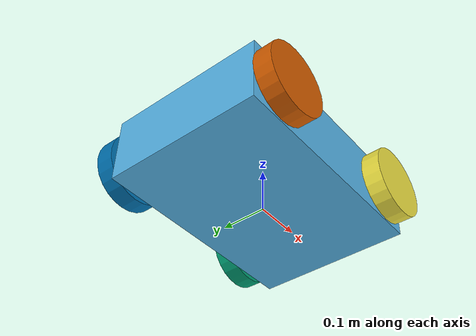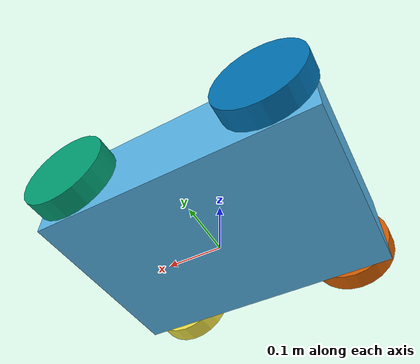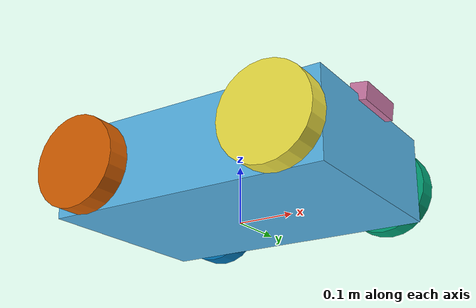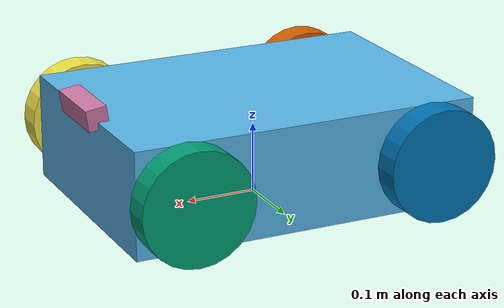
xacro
<?xml version="1.0"?>
<robot name="ugv" xmlns:xacro="http://www.ros.org/wiki/xacro">

  <xacro:property name="chassis_length" value="0.50"/>
  <xacro:property name="chassis_width"  value="0.35"/>
  <xacro:property name="chassis_height" value="0.15"/>
  <xacro:property name="wheel_radius"   value="0.08"/>
  <xacro:property name="wheel_width"    value="0.04"/>

  <link name="base_link"/>

  <link name="chassis">
    <visual>
      <geometry><box size="${chassis_length} ${chassis_width} ${chassis_height}"/></geometry>
    </visual>
    <collision>
      <geometry><box size="${chassis_length} ${chassis_width} ${chassis_height}"/></geometry>
    </collision>
    <inertial>
      <mass value="8.0"/>
      <inertia ixx="0.1" ixy="0.0" ixz="0.0" iyy="0.1" iyz="0.0" izz="0.1"/>
    </inertial>
  </link>

  <joint name="base_to_chassis" type="fixed">
    <parent link="base_link"/>
    <child link="chassis"/>
    <origin xyz="0 0 ${wheel_radius}" rpy="0 0 0"/>
  </joint>

  <!-- ===================== Wheels (skid-steer, 4x) ===================== -->
  <xacro:macro name="wheel" params="prefix x_offset y_offset">
    <link name="${prefix}_wheel">
      <visual>
        <geometry><cylinder radius="${wheel_radius}" length="${wheel_width}"/></geometry>
        <origin rpy="1.5708 0 0"/>
      </visual>
      <collision>
        <geometry><cylinder radius="${wheel_radius}" length="${wheel_width}"/></geometry>
        <origin rpy="1.5708 0 0"/>
      </collision>
      <inertial>
        <mass value="0.6"/>
        <inertia ixx="0.001" ixy="0.0" ixz="0.0" iyy="0.001" iyz="0.0" izz="0.001"/>
      </inertial>
    </link>
    <joint name="${prefix}_wheel_joint" type="continuous">
      <parent link="chassis"/>
      <child link="${prefix}_wheel"/>
      <origin xyz="${x_offset} ${y_offset} 0" rpy="0 0 0"/>
      <axis xyz="0 1 0"/>
    </joint>
  </xacro:macro>

  <xacro:wheel prefix="front_left"  x_offset="0.18"  y_offset="0.20"/>
  <xacro:wheel prefix="front_right" x_offset="0.18"  y_offset="-0.20"/>
  <xacro:wheel prefix="rear_left"   x_offset="-0.18" y_offset="0.20"/>
  <xacro:wheel prefix="rear_right"  x_offset="-0.18" y_offset="-0.20"/>

  <!-- ===================== Stereo camera + IMU mount ===================== -->
  <!-- Single fixed, forward-facing mount -- rigidly bolted, no rotating parts. -->
  <link name="camera_link">
    <visual>
      <geometry><box size="0.03 0.10 0.03"/></geometry>
    </visual>
  </link>

  <joint name="chassis_to_camera" type="fixed">
    <parent link="chassis"/>
    <child link="camera_link"/>
    <!-- mounted at the front, slightly tilted down to see near-field ground -->
    <origin xyz="${chassis_length/2} 0 0.08" rpy="0 0.15 0"/>
  </joint>

  <link name="imu_link"/>
  <joint name="camera_to_imu" type="fixed">
    <parent link="camera_link"/>
    <child link="imu_link"/>
    <origin xyz="0 0 0" rpy="0 0 0"/>
  </joint>

  <!-- ===================== Gazebo plugins ===================== -->
  <gazebo reference="camera_link">
    <sensor type="depth" name="stereo_camera">
      <!-- placeholder: configure stereo baseline, resolution, and
           frame rate to match the intended real sensor (e.g. RealSense D435i) -->
    </sensor>
  </gazebo>

  <gazebo reference="imu_link">
    <sensor type="imu" name="imu_sensor">
      <!-- placeholder: set update rate + noise model -->
    </sensor>
  </gazebo>

  <gazebo>
    <plugin name="diff_drive" filename="libgazebo_ros_diff_drive.so">
      <!-- placeholder: wheel joints, separation, diameter, /cmd_vel topic -->
    </plugin>
  </gazebo>

</robot>
